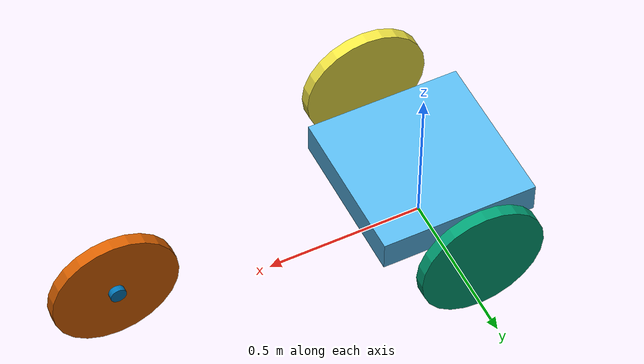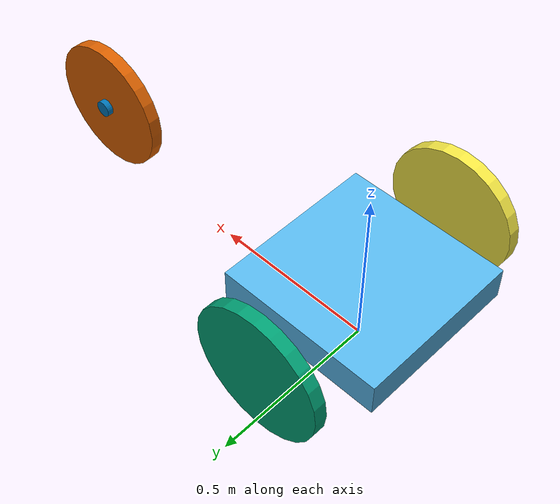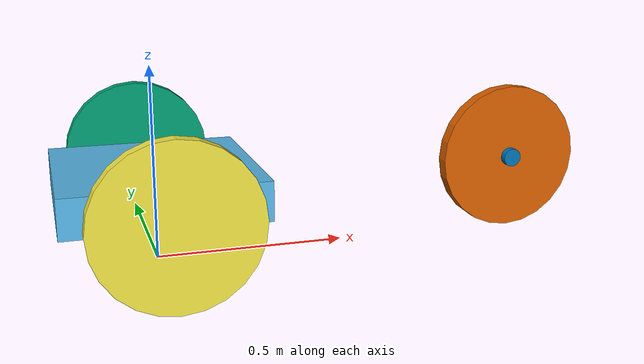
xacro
<?xml version="1.0"?>
<robot name="TS0" xmlns:xacro="http://ros.org/wiki/xacro">

     <!-- ====================================================
                           Base Includes
     ========================================================= -->
     <xacro:include filename="$(find tricycle_description)/config/tricycle_config.urdf.xacro"/>
     <xacro:include filename="$(find tricycle_description)/urdf/links.urdf.xacro"/>
	<xacro:include filename="$(find terrasentia_sensors)/urdf/all_sensors.urdf.xacro" />

     <!-- ====================================================
                           Components
     ========================================================= -->

	<!-- base_link -->
	<link name="${PARENT}"/>

	<!-- Chassis -->
	<xacro:tricycle_chassis name="chassis" parent="${PARENT}" xyz="0.0 0 ${BACK_WHEEL_RADIUS}" rpy="0 0 0" dx="${DX}" dy="${DY}" dz="${DZ}" color="grey"/>

	<!-- Wheels  -->
	<xacro:tricycle_wheel name="right"   parent="${PARENT}"  xyz="0.0  ${BACK_WHEEL_SEPERATION/2} ${BACK_WHEEL_RADIUS}" rpy="${-M_PI/2} 0 0" radius="${BACK_WHEEL_RADIUS}" length="${WHEEL_DEPTH}" color="green"/>
	<xacro:tricycle_wheel name="left"    parent="${PARENT}"  xyz="0.0  ${-BACK_WHEEL_SEPERATION/2} ${BACK_WHEEL_RADIUS}" rpy="${-M_PI/2} 0 0" radius="${BACK_WHEEL_RADIUS}" length="${WHEEL_DEPTH}" color="green"/>
	<xacro:tricycle_steering name="front"  parent="${PARENT}" flip="-1" anglelimit="${M_PI/4}"  xyz="${FRONT_WHEEL_SEPERATION}  0.0   ${FRONT_WHEEL_RADIUS}" rpy="${M_PI/2} 0 0" radius="${FRONT_WHEEL_RADIUS}" length="${WHEEL_DEPTH}" color="orange"/>

	<!-- ====================================================
					  Sensors
	========================================================= -->
	<!-- IMU -->
     <xacro:sensor_imu_terra name="imu" parent="${PARENT}" color="red"
                    update_rate="50.0"
                    noise="0.005"
                    yaw_offset="0.0"
                    yaw_drift="0.02"
                    yaw_noise="0.01"
                    rate_offset="0.0 0.0 0.0"
                    rate_drift="0.002 0.002 0.002"
                    rate_noise="0.001 0.001 0.001"
                    accel_offset="0.0 0.0 0.0"
                    accel_drift="0.005 0.005 0.005"
                    accel_noise="0.005 0.005 0.005">
          <origin xyz="0 0 ${BACK_WHEEL_RADIUS}" rpy="0 0 0"/>
     </xacro:sensor_imu_terra>

	<gazebo>
		<plugin name="tricycle_drive_controller" filename="libTricycleDriveModPlugin.so">
			<rosDebugLevel>Debug</rosDebugLevel>
			<robotNamespace></robotNamespace>
			<publishWheelTF>false</publishWheelTF>
			<publishWheelJointState>true</publishWheelJointState>
			<alwaysOn>true</alwaysOn>
			<steeringJoint>front_steering_joint</steeringJoint>
			<actuatedWheelJoint>front_wheel_joint</actuatedWheelJoint>
			<encoderWheelLeftJoint>left_wheel_joint</encoderWheelLeftJoint>
			<encoderWheelRightJoint>right_wheel_joint</encoderWheelRightJoint>
			<actuatedWheelDiameter>${FRONT_WHEEL_RADIUS}</actuatedWheelDiameter>
			<encoderWheelDiameter>${BACK_WHEEL_RADIUS}</encoderWheelDiameter>
			<encoderWheelSeparation>${BACK_WHEEL_SEPERATION}</encoderWheelSeparation>
			<commandTopic>cmd_vel</commandTopic>
			<odometryTopic>odom</odometryTopic>
			<odometryFrame>odom</odometryFrame>
			<odometrySource>encoder</odometrySource>
			<robotBaseFrame>base_link</robotBaseFrame>
			<updateRate>10.0</updateRate>
			<wheelAcceleration>2.5</wheelAcceleration>
			<wheelDeceleration>10.0</wheelDeceleration>
			<wheelSpeedTolerance>0.05</wheelSpeedTolerance>
			<wheelTorque>5</wheelTorque>
			<steeringSpeed>1.5</steeringSpeed>
			<steeringAngleTolerance>0.01</steeringAngleTolerance>
			<steeringAngleLimit>1.5708</steeringAngleLimit>
		</plugin>
	</gazebo>

</robot>

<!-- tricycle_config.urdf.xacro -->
<robot xmlns:xacro="http://ros.org/wiki/xacro">

     <!-- ====================================================
                           Define Variables
     ========================================================= -->
     <xacro:property name="FRONT_WHEEL_RADIUS" value="0.2"/>
     <xacro:property name="BACK_WHEEL_RADIUS" value="0.2"/>
	<xacro:property name="FRONT_WHEEL_SEPERATION" value="1.0"/>
     <xacro:property name="BACK_WHEEL_SEPERATION" value="0.75"/>
     <xacro:property name="DX" value="0.5"/>
     <xacro:property name="DY" value="0.5"/>
     <xacro:property name="DZ" value="0.1"/>
	<xacro:property name="WHEEL_DEPTH" value="0.03838"/>

     <!-- ====================================================
                         Wheel Properties
     ========================================================= -->
     <xacro:property name="FRONT_WHEEL_FRICTION" value="0.75"/>
     <xacro:property name="RR_WHEEL_FRICTION" value="0.75"/>
     <xacro:property name="RL_WHEEL_FRICTION" value="0.75"/>

     <!-- ====================================================
                           Constants
     ========================================================= -->
     <xacro:property name="M_PI" value="3.1415926535897931" />

	<!-- ====================================================
					  Link Names
	========================================================= -->
	<xacro:property name="PARENT" value="base_link" />
</robot>

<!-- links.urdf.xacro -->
<robot xmlns:xacro="http://ros.org/wiki/xacro">

     <xacro:include filename="$(find tricycle_description)/urdf/includes/materials.urdf.xacro"/>
	<xacro:property name="M_PI" value="3.1415926535897931" />

	<xacro:macro name="cylinder_inertial_with_origin" params="radius length mass *origin">
		<inertial>
			<mass value="${mass}" />
			<insert_block name="origin" />
			<inertia ixx="${0.0833333 * mass * (3 * radius * radius + length * length)}" ixy="0.0" ixz="0.0"
			iyy="${0.0833333 * mass * (3 * radius * radius + length * length)}" iyz="0.0"
			izz="${0.5 * mass * radius * radius}" />
		</inertial>
	</xacro:macro>

	<xacro:macro name="cylinder_inertial" params="radius length mass">
		<inertial>
			<mass value="${mass}" />
			<origin xyz="0 0 0" />
			<inertia ixx="${0.0833333 * mass * (3 * radius * radius + length * length)}" ixy="0.0" ixz="0.0"
			iyy="${0.0833333 * mass * (3 * radius * radius + length * length)}" iyz="0.0"
			izz="${0.5 * mass * radius * radius}" />
		</inertial>
	</xacro:macro>

	<xacro:macro name="box_inertial_with_origin" params="x y z mass origin">
		<inertial>
			<mass value="${mass}" />
			<origin xyz="${origin}" />
			<inertia ixx="${0.0833333 * mass * (y*y + z*z)}" ixy="0.0" ixz="0.0"
			iyy="${0.0833333 * mass * (x*x + z*z)}" iyz="0.0"
			izz="${0.0833333 * mass * (x*x + y*y)}" />
		</inertial>
	</xacro:macro>

	<xacro:macro name="box_inertial" params="x y z mass">
		<inertial>
			<mass value="${mass}" />
			<origin xyz="0 0 0" />
			<inertia ixx="${0.0833333 * mass * (y*y + z*z)}" ixy="0.0" ixz="0.0"
			iyy="${0.0833333 * mass * (x*x + z*z)}" iyz="0.0"
			izz="${0.0833333 * mass * (x*x + y*y)}" />
		</inertial>
	</xacro:macro>

     <!-- ====================================================
                           Chassis
     ========================================================= -->

	<xacro:macro name="tricycle_chassis" params="name parent dx dy dz xyz rpy color">
		<!-- Chassis -->
		<joint name="${parent}_${name}_joint" type="fixed">
			<origin xyz="${xyz}" rpy="${rpy}"/>
			<parent link="${parent}"/>
			<child link="${name}"/>
		</joint>

		<link name="${name}">
			<visual name="${name}_visual">
				<geometry name="${name}_geometry">
					<box size="${dx} ${dy} ${dz}"/>
				</geometry>
				<xacro:color_material color="${color}"/>
			</visual>
			<collision>
				<geometry>
					<box size="${dx} ${dy} ${dz}"/>
				</geometry>
			</collision>
			<xacro:box_inertial x="${dx}" y="${dy}"  z="${dz}" mass="10.0"/>
		</link>

		<xacro:color_gazebo parent="${name}" color="${color}"/>
	</xacro:macro>

	<!-- ====================================================
                           Wheel Links
     ========================================================= -->
	<xacro:macro name="tricycle_wheel" params="name parent xyz rpy radius length flip=1 color">
		<joint name="${name}_wheel_joint" type="continuous">
			<origin xyz="${xyz}" rpy="${rpy}"/>
			<parent link="${parent}"/>
			<child link="${name}_wheel"/>
			<axis xyz="0 0 1"/>
			<anchor xyz="0 0 0"/>
			<limit effort="100" velocity="100" k_velocity="0"/>
			<joint_properties damping="0.0" friction="0.0"/>
		</joint>

		<link name="${name}_wheel">
			<visual name="${name}_wheel_visual">
				<origin xyz="0 0 0" rpy="0 0 0"/>
				<geometry name="{name}_wheel_geometry">
					<cylinder radius="${radius}" length="${length}"/>
				</geometry>
				<xacro:color_material color="${color}"/>
			</visual>
			<collision>
				<origin xyz="0 0 0" rpy="0 0 0"/>
				<geometry>
					<cylinder radius="${radius}" length="${length}"/>
				</geometry>
			</collision>
			<xacro:cylinder_inertial radius="${radius}" length="${length}" mass="1.0" />
		</link>

		<xacro:color_gazebo parent="${name}_wheel" color="${color}"/>
	</xacro:macro>

	<!-- steering joint -->
	<xacro:macro name="tricycle_steering" params="name parent xyz rpy radius length anglelimit flip=1 color=blue">
		<joint name="${name}_steering_joint" type="continuous">
			<origin xyz="${xyz}" rpy="${rpy}"/>
			<parent link="${parent}"/>
			<child link="${name}_steering"/>
			<axis xyz="0 1 0"/>
			<anchor xyz="0 0 0"/>
			<limit effort="5" velocity="5" lower="${-anglelimit}" upper="${anglelimit}"/>
			<dynamics damping="0.0" friction="0.0"/>
               <safety_controller k_position="100" k_velocity="100" soft_lower_limit="${-(anglelimit-0.2)}" soft_upper_limit="${anglelimit-0.2}"/>
		</joint>

		<link name="${name}_steering">
			<visual name="${name}_visual">
				<origin xyz="0 0 0" rpy="0 0 0"/>
				<geometry name="${name}_geometry">
					<cylinder radius="${radius / 8.0}" length="${length * 2}"/>
				</geometry>
				<xacro:color_material color="${color}"/>
			</visual>
			<xacro:cylinder_inertial radius="${radius / 8.0}" length="${length* 2}" mass="1.0" />
		</link>

		<xacro:color_gazebo parent="${name}_steering" color="${color}"/>
		<xacro:tricycle_wheel name="${name}"  parent="${name}_steering" flip="${flip}"  xyz="0 0 0" rpy="0 0 0" radius="${radius}" length="${length}" color="${color}"/>
	</xacro:macro>

	<!-- wheel joint -->
	<xacro:macro name="tricycle_wheel_actuated" params="name parent xyz rpy radius length color=blue">
		<joint name="${name}_driver_joint" type="continuous">
			<origin xyz="${xyz}" rpy="${rpy}"/>
			<parent link="${parent}"/>
			<child link="${name}_driver"/>
			<axis xyz="0 1 0"/>
			<anchor xyz="0 0 0"/>
			<limit effort="100" velocity="100" k_velocity="0"/>
			<joint_properties damping="0.0" friction="0.0"/>
		</joint>

		<link name="${name}_driver">
			<visual name="${name}_visual">
				<origin xyz="0 0 0" rpy="0 0 0"/>
				<geometry name="${name}_geometry">
					<cylinder radius="${radius / 8.0}" length="${length * 2}"/>
				</geometry>
				<xacro:color_material color="${color}"/>
			</visual>
			<xacro:cylinder_inertial radius="${radius / 8.0}" length="${length* 2}" mass="1.0" />
		</link>

		<xacro:color_gazebo parent="${name}_driver" color="${color}"/>
		<xacro:tricycle_wheel name="${name}"  parent="${name}_driver"  xyz="0 0 0" rpy="0 0 0" radius="${radius}" length="${length}" color="${color}"/>
	</xacro:macro>

	<!-- ====================================================
                           Tricycle Drive
     ========================================================= -->
	<xacro:macro name="tricycle_drive">
		<gazebo>
			<plugin name="tricycle_drive_controller" filename="libgazebo_ros_tricycle_drive.so">
				<rosDebugLevel>Debug</rosDebugLevel>
				<robotNamespace></robotNamespace>
				<publishWheelTF>false</publishWheelTF>
				<publishWheelJointState>true</publishWheelJointState>
				<alwaysOn>true</alwaysOn>
				<steeringJoint>front_steering_joint</steeringJoint>
				<actuatedWheelJoint>left_wheel_joint</actuatedWheelJoint>
				<encoderWheelLeftJoint>left_wheel_joint</encoderWheelLeftJoint>
				<encoderWheelRightJoint>right_wheel_joint</encoderWheelRightJoint>
				<actuatedWheelDiameter>0.135</actuatedWheelDiameter>
				<encoderWheelDiameter>0.135</encoderWheelDiameter>
				<encoderWheelSeparation>0.548</encoderWheelSeparation>
				<commandTopic>cmd_vel</commandTopic>
				<odometryTopic>odom</odometryTopic>
				<odometryFrame>odom</odometryFrame>
				<odometrySource>encoder</odometrySource>
				<robotBaseFrame>base_link</robotBaseFrame>
				<updateRate>10.0</updateRate>
				<wheelAcceleration>1.8</wheelAcceleration>
				<wheelDeceleration>5.0</wheelDeceleration>
				<wheelSpeedTolerance>0.05</wheelSpeedTolerance>
				<wheelTorque>20</wheelTorque>
				<steeringSpeed>0.4</steeringSpeed>
				<steeringAngleTolerance>0.02</steeringAngleTolerance>
			</plugin>
		</gazebo>
	</xacro:macro>

</robot>

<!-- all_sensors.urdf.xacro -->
<robot name="all_sensors" xmlns:xacro="http://www.ros.org/wiki/xacro">

	<!-- This file unifies all sensors that can be used on simulation, defined as xacro:macros -->

	<!-- ====================================================
                         	Cameras
     ========================================================= -->

	<!-- Axis p5512 -->
	<xacro:include filename="$(find terrasentia_sensors)/urdf/axis_p5512.urdf.xacro" />

	<!-- Axis m5013 -->
	<xacro:include filename="$(find terrasentia_sensors)/urdf/axis_m5013.urdf.xacro" />

	<!-- uEye CP Gige -->
	<xacro:include filename="$(find terrasentia_sensors)/urdf/ueye_cp_gige.urdf.xacro" />

	<!-- ELP USB Camera w/ Normal Lens -->
	<xacro:include filename="$(find terrasentia_sensors)/urdf/elp_usb_camera.urdf.xacro" />

	<!-- ====================================================
                         	RGBD
     ========================================================= -->

	<!-- Asus Xtion PRO -->
	<xacro:include filename="$(find terrasentia_sensors)/urdf/asus_xtion_pro.urdf.xacro" />
	<!-- Kinect -->
	<xacro:include filename="$(find terrasentia_sensors)/urdf/kinect.urdf.xacro" />
	<!-- KinectV2 -->
	<xacro:include filename="$(find terrasentia_sensors)/urdf/kinectv2.urdf.xacro" />
	<!-- Orbbec Astra -->
	<xacro:include filename="$(find terrasentia_sensors)/urdf/orbbec_astra.urdf.xacro" />
	<!-- Fotonic E Series -->
	<xacro:include filename="$(find terrasentia_sensors)/urdf/fotonic_e.urdf.xacro" />

	<!-- ====================================================
						GPS
	========================================================= -->

	<!-- GPS -->
	<xacro:include filename="$(find terrasentia_sensors)/urdf/gps.urdf.xacro" />
	<xacro:include filename="$(find terrasentia_sensors)/urdf/gps-with-periodicnoisebox.urdf.xacro" />

	<!-- ====================================================
                         	LiDAR
     ========================================================= -->

	<!-- Hokuyo urg04lx -->
	<xacro:include filename="$(find terrasentia_sensors)/urdf/hokuyo_urg04lx.urdf.xacro" />

	<!-- Hokuyo utm30lx -->
	<xacro:include filename="$(find terrasentia_sensors)/urdf/hokuyo_utm30lx.urdf.xacro" />

	<!-- Hokuyo ust10lx -->
	<xacro:include filename="$(find terrasentia_sensors)/urdf/hokuyo_ust10lx.urdf.xacro" />
	<!-- Hokuyo 3d -->
	<xacro:include filename="$(find terrasentia_sensors)/urdf/hokuyo3d.urdf.xacro" />

	<!-- Sick s3000 -->
	<xacro:include filename="$(find terrasentia_sensors)/urdf/sick_s3000.urdf.xacro" />

	<!-- Sick s300 -->
	<xacro:include filename="$(find terrasentia_sensors)/urdf/sick_s300.urdf.xacro" />

	<!-- Sick Tim 571 -->
	<xacro:include filename="$(find terrasentia_sensors)/urdf/sick_tim571.urdf.xacro" />

	<!-- Rplidar -->
	<xacro:include filename="$(find terrasentia_sensors)/urdf/rplidar.urdf.xacro" />

	<!-- Velodyne VLP-16 (Puck) -->
	<xacro:include filename="$(find terrasentia_sensors)/urdf/vlp_16.urdf.xacro" />

	<!-- TEST: Velodyne VLP-16 (Puck) -->
	<xacro:include filename="$(find terrasentia_sensors)/urdf/test_vlp_16.urdf.xacro" />
	<xacro:include filename="$(find terrasentia_sensors)/urdf/test_vlp_16_support.urdf.xacro" />

	<!-- ====================================================
                         	IMU
     ========================================================= -->
	<!-- Imu -->
	<xacro:include filename="$(find terrasentia_sensors)/urdf/imu.urdf.xacro" />

	<!-- Imu hector -->
	<xacro:include filename="$(find terrasentia_sensors)/urdf/imu_hector_plugin.urdf.xacro" />

	<!-- Imu Terra -->
	<xacro:include filename="$(find terrasentia_sensors)/urdf/imu_terra_plugin.urdf.xacro" />

	<!-- ====================================================
                         	Misc
     ========================================================= -->

	<!--Sonar sensor params="name parent *origin ros_topic update_rate min_range max_range field_of_view ray_count"-->
	<xacro:include filename="sonar.urdf.xacro" />

</robot>

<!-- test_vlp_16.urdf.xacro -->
<robot xmlns:xacro="http://www.ros.org/wiki/xacro" name="VLP-16">
  <xacro:property name="M_PI" value="3.1415926535897931" />
  <xacro:include filename="$(find terrasentia_sensors)/urdf/test_vlp_16_support.urdf.xacro" />

  <xacro:macro name="sensor_vlp_16_gpu_hack" params="*origin parent:=base_link name:=velodyne topic:=/velodyne_points hz:=10 lasers:=16 samples:=1875 collision_range:=0.3 min_range:=0.9 max_range:=130.0 noise:=0.008 min_angle:=-${M_PI} max_angle:=${M_PI} color:=black visualize:=true">

    <joint name="${name}_base_mount_joint" type="fixed">
      <xacro:insert_block name="origin" />
      <parent link="${parent}"/>
      <child link="${name}_combined_base_link"/>
    </joint>

    <link name="${name}_combined_base_link">
	    <inertial>
		    <mass value="0.01"/>
		    <origin xyz="0 0 0"/>
		    <inertia ixx="1e-7" ixy="0" ixz="0" iyy="1e-7" iyz="0" izz="1e-7"/>
	    </inertial>
    </link>

    <link name="${name}_base_link8">
      <inertial>
        <mass value="0.83"/>
        <origin xyz="0 0 0.03585"/>
        <inertia ixx="${(0.83 * (3.0*0.0516*0.0516 + 0.0717*0.0717)) / 12.0}" ixy="0" ixz="0"
          iyy="${(0.83 * (3.0*0.0516*0.0516 + 0.0717*0.0717)) / 12.0}" iyz="0"
          izz="${0.5 * 0.83 * (0.0516*0.0516)}"/>
      </inertial>
      <visual>
        <geometry>
          <mesh filename="package://terrasentia_sensors/meshes/VLP16_base_1.dae" />
        </geometry>
      </visual>
      <visual>
        <geometry>
          <mesh filename="package://terrasentia_sensors/meshes/VLP16_base_2.dae" />
        </geometry>
      </visual>
      <collision>
        <origin rpy="0 0 0" xyz="0 0 0.03585"/>
        <geometry>
          <cylinder radius="0.0516" length="0.0717"/>
        </geometry>
      </collision>
    </link>

	<!-- ======================
		Middle Angle Scan (0 degrees)
	=========================== -->
	<link name="${name}_8">
       <inertial>
         <mass value="0.01"/>
         <origin xyz="0 0 0"/>
         <inertia ixx="1e-7" ixy="0" ixz="0" iyy="1e-7" iyz="0" izz="1e-7"/>
       </inertial>
       <visual>
         <origin xyz="0 0 -0.0377" />
         <geometry>
           <mesh filename="package://terrasentia_sensors/meshes/VLP16_scan.dae" />
         </geometry>
       </visual>
     </link>

	<joint name="${name}_base_scan_joint8" type="fixed" >
		<origin xyz="0 0 0.0377" rpy="0 0 0" />
		<parent link="${name}_base_link8" />
		<child link="${name}_8"/>
	</joint>

	<joint name="${name}_base_scan_joint88" type="fixed" >
		<origin xyz="0 0 0" rpy="0 0 0" />
		<parent link="${name}_combined_base_link"/>
		<child link="${name}_base_link8" />
	</joint>

    	<!-- Gazebo requires the velodyne_gazebo_plugins package -->
	<gazebo reference="${name}_8">
		<sensor type="gpu_ray" name="${name}-VLP16">
			<pose>0 0 0 0 0 0</pose>
			<visualize>${visualize}</visualize>
			<update_rate>${hz}</update_rate>
			<ray>
				<scan>
					<horizontal>
						<samples>${samples}</samples>
						<resolution>1</resolution>
						<min_angle>${min_angle}</min_angle>
						<max_angle>${max_angle}</max_angle>
					</horizontal>
				</scan>
				<range>
					<min>${collision_range}</min>
					<max>${max_range+1}</max>
					<resolution>0.001</resolution>
				</range>
				<noise>
					<type>gaussian</type>
					<mean>0.0</mean>
					<stddev>0.0</stddev>
				</noise>
			</ray>
			<plugin name="las_control_8" filename="libterra_ros_2d_gpu_laser.so">
				<topicName>${topic}/8</topicName>
				<frameName>${name}_8</frameName>
				<min_range>${min_range}</min_range>
				<max_range>${max_range}</max_range>
				<gaussianNoise>${noise}</gaussianNoise>
			</plugin>
		</sensor>
	</gazebo>

	<xacro:sensor_test_vlp_16_support name="puck0" parent="${name}_combined_base_link" id="0" topic="${topic}" angle="15.0" visualize="${visualize}">
          <origin xyz="0 0 0" rpy="0 0 0"/>
     </xacro:sensor_test_vlp_16_support>

	<xacro:sensor_test_vlp_16_support name="puck1" parent="${name}_combined_base_link" id="1" topic="${topic}" angle="13.125" visualize="${visualize}">
          <origin xyz="0 0 0" rpy="0 0 0"/>
     </xacro:sensor_test_vlp_16_support>

	<xacro:sensor_test_vlp_16_support name="puck2" parent="${name}_combined_base_link" id="2" topic="${topic}" angle="11.25" visualize="${visualize}">
          <origin xyz="0 0 0" rpy="0 0 0"/>
     </xacro:sensor_test_vlp_16_support>

	<xacro:sensor_test_vlp_16_support name="puck3" parent="${name}_combined_base_link" id="3" topic="${topic}" angle="9.375" visualize="${visualize}">
          <origin xyz="0 0 0" rpy="0 0 0"/>
     </xacro:sensor_test_vlp_16_support>

	<xacro:sensor_test_vlp_16_support name="puck4" parent="${name}_combined_base_link" id="4" topic="${topic}" angle="7.5" visualize="${visualize}">
          <origin xyz="0 0 0" rpy="0 0 0"/>
     </xacro:sensor_test_vlp_16_support>

	<xacro:sensor_test_vlp_16_support name="puck5" parent="${name}_combined_base_link" id="5" topic="${topic}" angle="5.625" visualize="${visualize}">
          <origin xyz="0 0 0" rpy="0 0 0"/>
     </xacro:sensor_test_vlp_16_support>

	<xacro:sensor_test_vlp_16_support name="puck6" parent="${name}_combined_base_link" id="6" topic="${topic}" angle="3.75" visualize="${visualize}">
          <origin xyz="0 0 0" rpy="0 0 0"/>
     </xacro:sensor_test_vlp_16_support>

	<xacro:sensor_test_vlp_16_support name="puck7" parent="${name}_combined_base_link" id="7" topic="${topic}" angle="1.875" visualize="${visualize}">
          <origin xyz="0 0 0" rpy="0 0 0"/>
     </xacro:sensor_test_vlp_16_support>

	<xacro:sensor_test_vlp_16_support name="puck9" parent="${name}_combined_base_link" id="9" topic="${topic}" angle="-1.875" visualize="${visualize}">
          <origin xyz="0 0 0" rpy="0 0 0"/>
     </xacro:sensor_test_vlp_16_support>

	<xacro:sensor_test_vlp_16_support name="puck10" parent="${name}_combined_base_link" id="10" topic="${topic}" angle="-3.75" visualize="${visualize}">
          <origin xyz="0 0 0" rpy="0 0 0"/>
     </xacro:sensor_test_vlp_16_support>

	<xacro:sensor_test_vlp_16_support name="puck11" parent="${name}_combined_base_link" id="11" topic="${topic}" angle="-5.625" visualize="${visualize}">
          <origin xyz="0 0 0" rpy="0 0 0"/>
     </xacro:sensor_test_vlp_16_support>

	<xacro:sensor_test_vlp_16_support name="puck12" parent="${name}_combined_base_link" id="12" topic="${topic}" angle="-7.5" visualize="${visualize}">
          <origin xyz="0 0 0" rpy="0 0 0"/>
     </xacro:sensor_test_vlp_16_support>

	<xacro:sensor_test_vlp_16_support name="puck13" parent="${name}_combined_base_link" id="13" topic="${topic}" angle="-9.375" visualize="${visualize}">
          <origin xyz="0 0 0" rpy="0 0 0"/>
     </xacro:sensor_test_vlp_16_support>

	<xacro:sensor_test_vlp_16_support name="puck14" parent="${name}_combined_base_link" id="14" topic="${topic}" angle="-11.25" visualize="${visualize}">
          <origin xyz="0 0 0" rpy="0 0 0"/>
     </xacro:sensor_test_vlp_16_support>

	<xacro:sensor_test_vlp_16_support name="puck15" parent="${name}_combined_base_link" id="15" topic="${topic}" angle="-13.125" visualize="${visualize}">
          <origin xyz="0 0 0" rpy="0 0 0"/>
     </xacro:sensor_test_vlp_16_support>

	<xacro:sensor_test_vlp_16_support name="puck16" parent="${name}_combined_base_link" id="16" topic="${topic}" angle="-15.0" visualize="${visualize}">
          <origin xyz="0 0 0" rpy="0 0 0"/>
     </xacro:sensor_test_vlp_16_support>

  </xacro:macro>
</robot>

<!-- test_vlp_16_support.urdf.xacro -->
<robot xmlns:xacro="http://www.ros.org/wiki/xacro" name="VLP-16">
  <xacro:property name="M_PI" value="3.1415926535897931" />
  <xacro:macro name="sensor_test_vlp_16_support" params="*origin parent:=base_link name:=velodyne topic:=/velodyne_points hz:=10 lasers:=16 samples:=1875 collision_range:=0.3 min_range:=0.9 max_range:=130.0 noise:=0.008 min_angle:=-${M_PI} max_angle:=${M_PI} id visualize:=false angle">

    <joint name="${name}_base_mount_joint_${id}" type="fixed">
      <xacro:insert_block name="origin" />
      <parent link="${parent}"/>
      <child link="${name}_base_link_${id}"/>
    </joint>

    <link name="${name}_base_link_${id}">
      <inertial>
        <mass value="0.0001"/>
        <origin xyz="0 0 0.03585"/>
        <inertia ixx="${(0.0001 * (3.0*0.0516*0.0516 + 0.0717*0.0717)) / 12.0}" ixy="0" ixz="0"
          iyy="${(0.0001 * (3.0*0.0516*0.0516 + 0.0717*0.0717)) / 12.0}" iyz="0"
          izz="${0.5 * 0.0001 * (0.0516*0.0516)}"/>
      </inertial>
      <visual>
        <geometry>
          <mesh filename="package://terrasentia_sensors/meshes/VLP16_base_1.dae" />
        </geometry>
      </visual>
      <visual>
        <geometry>
          <mesh filename="package://terrasentia_sensors/meshes/VLP16_base_2.dae" />
        </geometry>
      </visual>
      <collision>
        <origin rpy="0 0 0" xyz="0 0 0.03585"/>
        <geometry>
          <cylinder radius="0.0516" length="0.0717"/>
        </geometry>
      </collision>
    </link>

	<link name="${name}_${id}">
		<inertial>
			<mass value="0.01"/>
			<origin xyz="0 0 0"/>
			<inertia ixx="1e-7" ixy="0" ixz="0" iyy="1e-7" iyz="0" izz="1e-7"/>
		</inertial>
	</link>
	<joint name="$base_scan_joint_${id}" type="fixed" >
		<origin xyz="0 0 0.0377" rpy="0 ${angle*M_PI/180.0} 0" />
 	    <parent link="${name}_base_link_${id}" />
 	    <child link="${name}_${id}"/>
     </joint>

    	<!-- Gazebo requires the velodyne_gazebo_plugins package -->
	<gazebo reference="${name}_${id}">
		<sensor type="gpu_ray" name="${name}-VLP16">
			<pose>0 0 0 0 0 0</pose>
			<visualize>${visualize}</visualize>
			<update_rate>${hz}</update_rate>
			<ray>
				<scan>
					<horizontal>
						<samples>${samples}</samples>
						<resolution>1</resolution>
						<min_angle>${min_angle}</min_angle>
						<max_angle>${max_angle}</max_angle>
					</horizontal>
				</scan>
				<range>
					<min>${collision_range}</min>
					<max>${max_range+1}</max>
					<resolution>0.001</resolution>
				</range>
				<noise>
					<type>gaussian</type>
					<mean>0.0</mean>
					<stddev>0.0</stddev>
				</noise>
			</ray>
			<plugin name="las_control_${id}" filename="libterra_ros_2d_gpu_laser.so">
				<topicName>${topic}/${id}</topicName>
				<frameName>${name}_${id}</frameName>
				<min_range>${min_range}</min_range>
				<max_range>${max_range}</max_range>
				<gaussianNoise>${noise}</gaussianNoise>
			</plugin>
		</sensor>
	</gazebo>

  </xacro:macro>
</robot>

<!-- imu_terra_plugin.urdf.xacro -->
<robot name="sensor_imu_terra" xmlns:xacro="http://www.ros.org/wiki/xacro">

     <xacro:include filename="$(find terrasentia_sensors)/urdf/includes/materials.urdf.xacro"/>

     <xacro:macro name="sensor_imu_terra" params="name parent *origin color update_rate noise yaw_offset yaw_drift yaw_noise rate_offset rate_drift rate_noise accel_drift accel_offset accel_noise">

          <joint name="${name}_joint" type="fixed">
               <axis xyz="1 0 0"/>
               <xacro:insert_block name="origin"/>
               <parent link="${parent}"/>
               <child link="${name}_link"/>
          </joint>

          <link name="${name}_link">
               <inertial>
                    <mass value="0.001"/>
                    <origin rpy="0 0 0" xyz="0 0 0"/>
                    <inertia ixx="0.000001" ixy="0" ixz="0" iyy="0.0000001" iyz="0" izz="0.000001"/>
               </inertial>
               <visual>
                    <origin rpy="0 0 0" xyz="0 0 0"/>
                    <geometry>
                         <box size="0.01 0.01 0.001"/>
                    </geometry>
                    <xacro:color_material color="${color}"/>
               </visual>
               <collision>
                    <origin rpy="0 0 0" xyz="0 0 0"/>
                    <geometry>
                         <box size=".01 .01 .001"/>
                    </geometry>
               </collision>
          </link>

          <!-- ====================================================
                                Gazebo
          ========================================================= -->

          <xacro:color_gazebo parent="${name}_link" color="${color}"/>

          <gazebo>
               <plugin name="${name}_controller" filename="libterra_ros_imu.so">
                    <alwaysOn>true</alwaysOn>
                    <topicName>${name}</topicName>
					<topicNameCustom>${name}/terra</topicNameCustom>

                    <serviceName>${name}/service</serviceName>
                    <bodyName>${name}_link</bodyName>
                    <updateRate>${update_rate}</updateRate>

                    <gaussianNoise>${noise}</gaussianNoise>

                    <!-- orientation parameters -->
                    <yawOffset>${yaw_offset}</yawOffset>
                    <yawDrift>${yaw_drift}</yawDrift>
                    <yawGaussianNoise>${yaw_noise}</yawGaussianNoise>

                    <!-- angular velocities parameters -->
                    <rateOffset>${rate_offset}</rateOffset>
                    <rateDrift>${rate_drift}</rateDrift>
                    <rateGaussianNoise>${rate_noise}</rateGaussianNoise>

                    <!-- linear accelerations parameters -->
                    <accelOffset>${accel_offset}</accelOffset>
                    <accelDrift>${accel_drift}</accelDrift>
                    <accelGaussianNoise>${accel_noise}</accelGaussianNoise>
               </plugin>
          </gazebo>

     </xacro:macro>

</robot>
